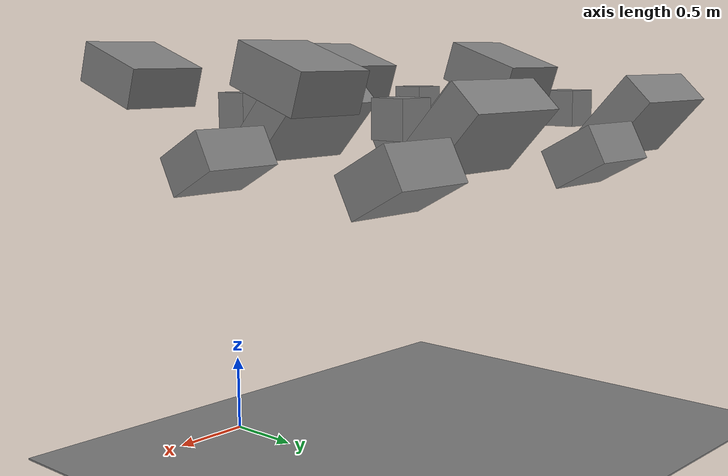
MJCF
<mujoco>
    <worldbody>
        <geom name="Cube" pos="0 0 0" quat="1 0 0 0" type="box" size="50 50 0.005"/>
        <body pos="-1.90787 0 2.2" quat="1 0 0 0">
            <geom name="boxActor" pos="0 0 0" quat="1 0 0 0" type="box" size="0.125 0.125 0.125"/>
            <freejoint/>
        </body>
        <body pos="-1.90787 0.608016 2.17518" quat="0.91819 0.39614 0 0">
            <geom name="boxActor_01" pos="0 0 0" quat="1 0 0 0" type="box" size="0.375 0.25 0.125"/>
            <freejoint/>
        </body>
        <body pos="-1.05031 0.765542 1.96819" quat="0.970565 0.240841 0 0">
            <geom name="boxActor_02" pos="0 0 0" quat="1 0 0 0" type="box" size="0.25 0.1875 0.125"/>
            <freejoint/>
        </body>
        <body pos="-1.05031 0.0424854 2.45662" quat="0.986571 -0.163331 0 0">
            <geom name="boxActor_03" pos="0 0 0" quat="1 0 0 0" type="box" size="0.25 0.25 0.125"/>
            <freejoint/>
        </body>
        <body pos="-1.90787 2.01517 2.17518" quat="0.91819 0.39614 0 0">
            <geom name="boxActor_04" pos="0 0 0" quat="1 0 0 0" type="box" size="0.375 0.25 0.125"/>
            <freejoint/>
        </body>
        <body pos="-1.05031 1.44964 2.45662" quat="0.986571 -0.163331 0 0">
            <geom name="boxActor_05" pos="0 0 0" quat="1 0 0 0" type="box" size="0.25 0.25 0.125"/>
            <freejoint/>
        </body>
        <body pos="-1.05031 2.1727 1.96819" quat="0.970565 0.240841 0 0">
            <geom name="boxActor_06" pos="0 0 0" quat="1 0 0 0" type="box" size="0.25 0.1875 0.125"/>
            <freejoint/>
        </body>
        <body pos="-1.90787 1.40715 2.2" quat="1 0 0 0">
            <geom name="boxActor_07" pos="0 0 0" quat="1 0 0 0" type="box" size="0.125 0.125 0.125"/>
            <freejoint/>
        </body>
        <body pos="-0.116574 0.608016 2.17518" quat="0.91819 0.39614 0 0">
            <geom name="boxActor_08" pos="0 0 0" quat="1 0 0 0" type="box" size="0.375 0.25 0.125"/>
            <freejoint/>
        </body>
        <body pos="0.740994 0.0424854 2.45662" quat="0.986571 -0.163331 0 0">
            <geom name="boxActor_09" pos="0 0 0" quat="1 0 0 0" type="box" size="0.25 0.25 0.125"/>
            <freejoint/>
        </body>
        <body pos="0.740994 0.765542 1.96819" quat="0.970565 0.240841 0 0">
            <geom name="boxActor_10" pos="0 0 0" quat="1 0 0 0" type="box" size="0.25 0.1875 0.125"/>
            <freejoint/>
        </body>
        <body pos="-0.116574 0 2.2" quat="1 0 0 0">
            <geom name="boxActor_11" pos="0 0 0" quat="1 0 0 0" type="box" size="0.125 0.125 0.125"/>
            <freejoint/>
        </body>
        <body pos="-0.116574 2.01517 2.17518" quat="0.91819 0.39614 0 0">
            <geom name="boxActor_12" pos="0 0 0" quat="1 0 0 0" type="box" size="0.375 0.25 0.125"/>
            <freejoint/>
        </body>
        <body pos="0.740994 1.44964 2.45662" quat="0.986571 -0.163331 0 0">
            <geom name="boxActor_13" pos="0 0 0" quat="1 0 0 0" type="box" size="0.25 0.25 0.125"/>
            <freejoint/>
        </body>
        <body pos="0.740994 2.1727 1.96819" quat="0.970565 0.240841 0 0">
            <geom name="boxActor_14" pos="0 0 0" quat="1 0 0 0" type="box" size="0.25 0.1875 0.125"/>
            <freejoint/>
        </body>
        <body pos="-0.116574 1.40715 2.2" quat="1 0 0 0">
            <geom name="boxActor_15" pos="0 0 0" quat="1 0 0 0" type="box" size="0.125 0.125 0.125"/>
            <freejoint/>
        </body>
    </worldbody>
</mujoco>
